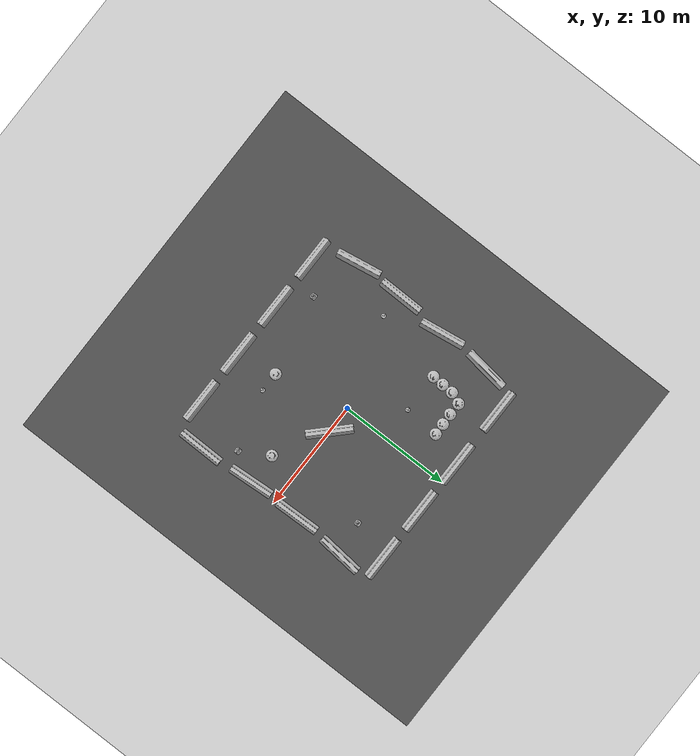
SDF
<sdf version="1.6">
 <world name="default">
  <light name="sun" type="directional">
   <pose>0 0 10 0 -0 0</pose>
   <diffuse>0.8 0.8 0.8 1</diffuse>
   <specular>0.2 0.2 0.2 1</specular>
   <attenuation>
    <range>1000</range>
    <constant>0.9</constant>
    <linear>0.01</linear>
    <quadratic>0.001</quadratic>
   </attenuation>
   <direction>-0.5 0.1 -0.9</direction>
  </light>
  <model name="ground_plane">
   <static>1</static>
   <link name="link">
    <collision name="collision">
     <geometry><plane><normal>0 0 1</normal><size>100 100</size></plane></geometry>
     <surface><friction><ode><mu>100</mu><mu2>50</mu2></ode></friction></surface>
    </collision>
    <visual name="visual">
     <cast_shadows>0</cast_shadows>
     <geometry><plane><normal>0 0 1</normal><size>100 100</size></plane></geometry>
     <material>
      <script><uri>file://media/materials/scripts/gazebo.material</uri><name>Gazebo/Grey</name></script>
     </material>
    </visual>
    <velocity_decay><linear>0</linear><angular>0</angular></velocity_decay>
   </link>
  </model>
  <physics name="default_physics" default="0" type="ode">
   <max_step_size>0.01</max_step_size>
   <real_time_factor>1</real_time_factor>
   <real_time_update_rate>100</real_time_update_rate>
  </physics>
  <scene><ambient>0.4 0.4 0.4 1</ambient><background>0.7 0.7 0.7 1</background><shadows>1</shadows></scene>
  <model name="jersey_barrier">
   <static>1</static>
   <link name="link">
    <visual name="visual">
     <geometry><mesh><uri>model://jersey_barrier/meshes/jersey_barrier.dae</uri></mesh></geometry>
    </visual>
    <collision name="upright">
     <pose>0 0 0.5715 0 -0 0</pose>
     <geometry><box><size>4.06542 0.3063 1.143</size></box></geometry>
    </collision>
    <collision name="base">
     <pose>0 0 0.032258 0 -0 0</pose>
     <geometry><box><size>4.06542 0.8107 0.064516</size></box></geometry>
    </collision>
    <collision name="base2">
     <pose>0 0 0.1 0 -0 0</pose>
     <geometry><box><size>4.06542 0.65 0.1</size></box></geometry>
    </collision>
    <collision name="base3">
     <pose>0 0 0.2 0 -0 0</pose>
     <geometry><box><size>4.06542 0.5 0.1</size></box></geometry>
    </collision>
    <collision name="left-angle">
     <pose>0 -0.224 0.2401 0.9 -0 0</pose>
     <geometry><box><size>4.06542 0.5 0.064516</size></box></geometry>
    </collision>
    <collision name="right-angle">
     <pose>0 0.224 0.2401 -0.9 0 0</pose>
     <geometry><box><size>4.06542 0.5 0.064516</size></box></geometry>
    </collision>
    <velocity_decay><linear>0</linear><angular>0</angular></velocity_decay>
   </link>
   <pose>-8 -10 0 0 -0 0</pose>
  </model>
  <model name="jersey_barrier_0">
   <static>1</static>
   <link name="link">
    <visual name="visual">
     <geometry><mesh><uri>model://jersey_barrier/meshes/jersey_barrier.dae</uri></mesh></geometry>
    </visual>
    <collision name="upright">
     <pose>0 0 0.5715 0 -0 0</pose>
     <geometry><box><size>4.06542 0.3063 1.143</size></box></geometry>
    </collision>
    <collision name="base">
     <pose>0 0 0.032258 0 -0 0</pose>
     <geometry><box><size>4.06542 0.8107 0.064516</size></box></geometry>
    </collision>
    <collision name="base2">
     <pose>0 0 0.1 0 -0 0</pose>
     <geometry><box><size>4.06542 0.65 0.1</size></box></geometry>
    </collision>
    <collision name="base3">
     <pose>0 0 0.2 0 -0 0</pose>
     <geometry><box><size>4.06542 0.5 0.1</size></box></geometry>
    </collision>
    <collision name="left-angle">
     <pose>0 -0.224 0.2401 0.9 -0 0</pose>
     <geometry><box><size>4.06542 0.5 0.064516</size></box></geometry>
    </collision>
    <collision name="right-angle">
     <pose>0 0.224 0.2401 -0.9 0 0</pose>
     <geometry><box><size>4.06542 0.5 0.064516</size></box></geometry>
    </collision>
    <velocity_decay><linear>0</linear><angular>0</angular></velocity_decay>
   </link>
   <pose>-3 -10 0 0 -0 0</pose>
  </model>
  <model name="jersey_barrier_1">
   <static>1</static>
   <link name="link">
    <visual name="visual">
     <geometry><mesh><uri>model://jersey_barrier/meshes/jersey_barrier.dae</uri></mesh></geometry>
    </visual>
    <collision name="upright">
     <pose>0 0 0.5715 0 -0 0</pose>
     <geometry><box><size>4.06542 0.3063 1.143</size></box></geometry>
    </collision>
    <collision name="base">
     <pose>0 0 0.032258 0 -0 0</pose>
     <geometry><box><size>4.06542 0.8107 0.064516</size></box></geometry>
    </collision>
    <collision name="base2">
     <pose>0 0 0.1 0 -0 0</pose>
     <geometry><box><size>4.06542 0.65 0.1</size></box></geometry>
    </collision>
    <collision name="base3">
     <pose>0 0 0.2 0 -0 0</pose>
     <geometry><box><size>4.06542 0.5 0.1</size></box></geometry>
    </collision>
    <collision name="left-angle">
     <pose>0 -0.224 0.2401 0.9 -0 0</pose>
     <geometry><box><size>4.06542 0.5 0.064516</size></box></geometry>
    </collision>
    <collision name="right-angle">
     <pose>0 0.224 0.2401 -0.9 0 0</pose>
     <geometry><box><size>4.06542 0.5 0.064516</size></box></geometry>
    </collision>
    <velocity_decay><linear>0</linear><angular>0</angular></velocity_decay>
   </link>
   <pose>2 -10 0 0 -0 0</pose>
  </model>
  <model name="jersey_barrier_2">
   <static>1</static>
   <link name="link">
    <visual name="visual">
     <geometry><mesh><uri>model://jersey_barrier/meshes/jersey_barrier.dae</uri></mesh></geometry>
    </visual>
    <collision name="upright">
     <pose>0 0 0.5715 0 -0 0</pose>
     <geometry><box><size>4.06542 0.3063 1.143</size></box></geometry>
    </collision>
    <collision name="base">
     <pose>0 0 0.032258 0 -0 0</pose>
     <geometry><box><size>4.06542 0.8107 0.064516</size></box></geometry>
    </collision>
    <collision name="base2">
     <pose>0 0 0.1 0 -0 0</pose>
     <geometry><box><size>4.06542 0.65 0.1</size></box></geometry>
    </collision>
    <collision name="base3">
     <pose>0 0 0.2 0 -0 0</pose>
     <geometry><box><size>4.06542 0.5 0.1</size></box></geometry>
    </collision>
    <collision name="left-angle">
     <pose>0 -0.224 0.2401 0.9 -0 0</pose>
     <geometry><box><size>4.06542 0.5 0.064516</size></box></geometry>
    </collision>
    <collision name="right-angle">
     <pose>0 0.224 0.2401 -0.9 0 0</pose>
     <geometry><box><size>4.06542 0.5 0.064516</size></box></geometry>
    </collision>
    <velocity_decay><linear>0</linear><angular>0</angular></velocity_decay>
   </link>
   <pose>7 -10 0 0 -0 0</pose>
  </model>
  <model name="jersey_barrier_3">
   <static>1</static>
   <link name="link">
    <visual name="visual">
     <geometry><mesh><uri>model://jersey_barrier/meshes/jersey_barrier.dae</uri></mesh></geometry>
    </visual>
    <collision name="upright">
     <pose>0 0 0.5715 0 -0 0</pose>
     <geometry><box><size>4.06542 0.3063 1.143</size></box></geometry>
    </collision>
    <collision name="base">
     <pose>0 0 0.032258 0 -0 0</pose>
     <geometry><box><size>4.06542 0.8107 0.064516</size></box></geometry>
    </collision>
    <collision name="base2">
     <pose>0 0 0.1 0 -0 0</pose>
     <geometry><box><size>4.06542 0.65 0.1</size></box></geometry>
    </collision>
    <collision name="base3">
     <pose>0 0 0.2 0 -0 0</pose>
     <geometry><box><size>4.06542 0.5 0.1</size></box></geometry>
    </collision>
    <collision name="left-angle">
     <pose>0 -0.224 0.2401 0.9 -0 0</pose>
     <geometry><box><size>4.06542 0.5 0.064516</size></box></geometry>
    </collision>
    <collision name="right-angle">
     <pose>0 0.224 0.2401 -0.9 0 0</pose>
     <geometry><box><size>4.06542 0.5 0.064516</size></box></geometry>
    </collision>
    <velocity_decay><linear>0</linear><angular>0</angular></velocity_decay>
   </link>
   <pose>-7.50675 10 0 0 -0 0</pose>
  </model>
  <model name="jersey_barrier_4">
   <static>1</static>
   <link name="link">
    <visual name="visual">
     <geometry><mesh><uri>model://jersey_barrier/meshes/jersey_barrier.dae</uri></mesh></geometry>
    </visual>
    <collision name="upright">
     <pose>0 0 0.5715 0 -0 0</pose>
     <geometry><box><size>4.06542 0.3063 1.143</size></box></geometry>
    </collision>
    <collision name="base">
     <pose>0 0 0.032258 0 -0 0</pose>
     <geometry><box><size>4.06542 0.8107 0.064516</size></box></geometry>
    </collision>
    <collision name="base2">
     <pose>0 0 0.1 0 -0 0</pose>
     <geometry><box><size>4.06542 0.65 0.1</size></box></geometry>
    </collision>
    <collision name="base3">
     <pose>0 0 0.2 0 -0 0</pose>
     <geometry><box><size>4.06542 0.5 0.1</size></box></geometry>
    </collision>
    <collision name="left-angle">
     <pose>0 -0.224 0.2401 0.9 -0 0</pose>
     <geometry><box><size>4.06542 0.5 0.064516</size></box></geometry>
    </collision>
    <collision name="right-angle">
     <pose>0 0.224 0.2401 -0.9 0 0</pose>
     <geometry><box><size>4.06542 0.5 0.064516</size></box></geometry>
    </collision>
    <velocity_decay><linear>0</linear><angular>0</angular></velocity_decay>
   </link>
   <pose>-2 10 0 0 -0 0</pose>
  </model>
  <model name="jersey_barrier_5">
   <static>1</static>
   <link name="link">
    <visual name="visual">
     <geometry><mesh><uri>model://jersey_barrier/meshes/jersey_barrier.dae</uri></mesh></geometry>
    </visual>
    <collision name="upright">
     <pose>0 0 0.5715 0 -0 0</pose>
     <geometry><box><size>4.06542 0.3063 1.143</size></box></geometry>
    </collision>
    <collision name="base">
     <pose>0 0 0.032258 0 -0 0</pose>
     <geometry><box><size>4.06542 0.8107 0.064516</size></box></geometry>
    </collision>
    <collision name="base2">
     <pose>0 0 0.1 0 -0 0</pose>
     <geometry><box><size>4.06542 0.65 0.1</size></box></geometry>
    </collision>
    <collision name="base3">
     <pose>0 0 0.2 0 -0 0</pose>
     <geometry><box><size>4.06542 0.5 0.1</size></box></geometry>
    </collision>
    <collision name="left-angle">
     <pose>0 -0.224 0.2401 0.9 -0 0</pose>
     <geometry><box><size>4.06542 0.5 0.064516</size></box></geometry>
    </collision>
    <collision name="right-angle">
     <pose>0 0.224 0.2401 -0.9 0 0</pose>
     <geometry><box><size>4.06542 0.5 0.064516</size></box></geometry>
    </collision>
    <velocity_decay><linear>0</linear><angular>0</angular></velocity_decay>
   </link>
   <pose>3 10 0 0 -0 0</pose>
  </model>
  <model name="jersey_barrier_6">
   <static>1</static>
   <link name="link">
    <visual name="visual">
     <geometry><mesh><uri>model://jersey_barrier/meshes/jersey_barrier.dae</uri></mesh></geometry>
    </visual>
    <collision name="upright">
     <pose>0 0 0.5715 0 -0 0</pose>
     <geometry><box><size>4.06542 0.3063 1.143</size></box></geometry>
    </collision>
    <collision name="base">
     <pose>0 0 0.032258 0 -0 0</pose>
     <geometry><box><size>4.06542 0.8107 0.064516</size></box></geometry>
    </collision>
    <collision name="base2">
     <pose>0 0 0.1 0 -0 0</pose>
     <geometry><box><size>4.06542 0.65 0.1</size></box></geometry>
    </collision>
    <collision name="base3">
     <pose>0 0 0.2 0 -0 0</pose>
     <geometry><box><size>4.06542 0.5 0.1</size></box></geometry>
    </collision>
    <collision name="left-angle">
     <pose>0 -0.224 0.2401 0.9 -0 0</pose>
     <geometry><box><size>4.06542 0.5 0.064516</size></box></geometry>
    </collision>
    <collision name="right-angle">
     <pose>0 0.224 0.2401 -0.9 0 0</pose>
     <geometry><box><size>4.06542 0.5 0.064516</size></box></geometry>
    </collision>
    <velocity_decay><linear>0</linear><angular>0</angular></velocity_decay>
   </link>
   <pose>8 10 0 0 -0 0</pose>
  </model>
  <model name="jersey_barrier_7">
   <static>1</static>
   <link name="link">
    <visual name="visual">
     <geometry><mesh><uri>model://jersey_barrier/meshes/jersey_barrier.dae</uri></mesh></geometry>
    </visual>
    <collision name="upright">
     <pose>0 0 0.5715 0 -0 0</pose>
     <geometry><box><size>4.06542 0.3063 1.143</size></box></geometry>
    </collision>
    <collision name="base">
     <pose>0 0 0.032258 0 -0 0</pose>
     <geometry><box><size>4.06542 0.8107 0.064516</size></box></geometry>
    </collision>
    <collision name="base2">
     <pose>0 0 0.1 0 -0 0</pose>
     <geometry><box><size>4.06542 0.65 0.1</size></box></geometry>
    </collision>
    <collision name="base3">
     <pose>0 0 0.2 0 -0 0</pose>
     <geometry><box><size>4.06542 0.5 0.1</size></box></geometry>
    </collision>
    <collision name="left-angle">
     <pose>0 -0.224 0.2401 0.9 -0 0</pose>
     <geometry><box><size>4.06542 0.5 0.064516</size></box></geometry>
    </collision>
    <collision name="right-angle">
     <pose>0 0.224 0.2401 -0.9 0 0</pose>
     <geometry><box><size>4.06542 0.5 0.064516</size></box></geometry>
    </collision>
    <velocity_decay><linear>0</linear><angular>0</angular></velocity_decay>
   </link>
   <pose>9.74902 -2.57759 0 0 -0 1.64</pose>
  </model>
  <model name="jersey_barrier_8">
   <static>1</static>
   <link name="link">
    <visual name="visual">
     <geometry><mesh><uri>model://jersey_barrier/meshes/jersey_barrier.dae</uri></mesh></geometry>
    </visual>
    <collision name="upright">
     <pose>0 0 0.5715 0 -0 0</pose>
     <geometry><box><size>4.06542 0.3063 1.143</size></box></geometry>
    </collision>
    <collision name="base">
     <pose>0 0 0.032258 0 -0 0</pose>
     <geometry><box><size>4.06542 0.8107 0.064516</size></box></geometry>
    </collision>
    <collision name="base2">
     <pose>0 0 0.1 0 -0 0</pose>
     <geometry><box><size>4.06542 0.65 0.1</size></box></geometry>
    </collision>
    <collision name="base3">
     <pose>0 0 0.2 0 -0 0</pose>
     <geometry><box><size>4.06542 0.5 0.1</size></box></geometry>
    </collision>
    <collision name="left-angle">
     <pose>0 -0.224 0.2401 0.9 -0 0</pose>
     <geometry><box><size>4.06542 0.5 0.064516</size></box></geometry>
    </collision>
    <collision name="right-angle">
     <pose>0 0.224 0.2401 -0.9 0 0</pose>
     <geometry><box><size>4.06542 0.5 0.064516</size></box></geometry>
    </collision>
    <velocity_decay><linear>0</linear><angular>0</angular></velocity_decay>
   </link>
   <pose>9.70141 2.24369 0 0 -0 1.6</pose>
  </model>
  <model name="jersey_barrier_9">
   <static>1</static>
   <link name="link">
    <visual name="visual">
     <geometry><mesh><uri>model://jersey_barrier/meshes/jersey_barrier.dae</uri></mesh></geometry>
    </visual>
    <collision name="upright">
     <pose>0 0 0.5715 0 -0 0</pose>
     <geometry><box><size>4.06542 0.3063 1.143</size></box></geometry>
    </collision>
    <collision name="base">
     <pose>0 0 0.032258 0 -0 0</pose>
     <geometry><box><size>4.06542 0.8107 0.064516</size></box></geometry>
    </collision>
    <collision name="base2">
     <pose>0 0 0.1 0 -0 0</pose>
     <geometry><box><size>4.06542 0.65 0.1</size></box></geometry>
    </collision>
    <collision name="base3">
     <pose>0 0 0.2 0 -0 0</pose>
     <geometry><box><size>4.06542 0.5 0.1</size></box></geometry>
    </collision>
    <collision name="left-angle">
     <pose>0 -0.224 0.2401 0.9 -0 0</pose>
     <geometry><box><size>4.06542 0.5 0.064516</size></box></geometry>
    </collision>
    <collision name="right-angle">
     <pose>0 0.224 0.2401 -0.9 0 0</pose>
     <geometry><box><size>4.06542 0.5 0.064516</size></box></geometry>
    </collision>
    <velocity_decay><linear>0</linear><angular>0</angular></velocity_decay>
   </link>
   <pose>-10.0607 -6.69856 0 0 0 -1.4</pose>
  </model>
  <model name="jersey_barrier_10">
   <static>1</static>
   <link name="link">
    <visual name="visual">
     <geometry><mesh><uri>model://jersey_barrier/meshes/jersey_barrier.dae</uri></mesh></geometry>
    </visual>
    <collision name="upright">
     <pose>0 0 0.5715 0 -0 0</pose>
     <geometry><box><size>4.06542 0.3063 1.143</size></box></geometry>
    </collision>
    <collision name="base">
     <pose>0 0 0.032258 0 -0 0</pose>
     <geometry><box><size>4.06542 0.8107 0.064516</size></box></geometry>
    </collision>
    <collision name="base2">
     <pose>0 0 0.1 0 -0 0</pose>
     <geometry><box><size>4.06542 0.65 0.1</size></box></geometry>
    </collision>
    <collision name="base3">
     <pose>0 0 0.2 0 -0 0</pose>
     <geometry><box><size>4.06542 0.5 0.1</size></box></geometry>
    </collision>
    <collision name="left-angle">
     <pose>0 -0.224 0.2401 0.9 -0 0</pose>
     <geometry><box><size>4.06542 0.5 0.064516</size></box></geometry>
    </collision>
    <collision name="right-angle">
     <pose>0 0.224 0.2401 -0.9 0 0</pose>
     <geometry><box><size>4.06542 0.5 0.064516</size></box></geometry>
    </collision>
    <velocity_decay><linear>0</linear><angular>0</angular></velocity_decay>
   </link>
   <pose>-10.0774 -2.27159 0 0 -0 1.56</pose>
  </model>
  <model name="jersey_barrier_11">
   <static>1</static>
   <link name="link">
    <visual name="visual">
     <geometry><mesh><uri>model://jersey_barrier/meshes/jersey_barrier.dae</uri></mesh></geometry>
    </visual>
    <collision name="upright">
     <pose>0 0 0.5715 0 -0 0</pose>
     <geometry><box><size>4.06542 0.3063 1.143</size></box></geometry>
    </collision>
    <collision name="base">
     <pose>0 0 0.032258 0 -0 0</pose>
     <geometry><box><size>4.06542 0.8107 0.064516</size></box></geometry>
    </collision>
    <collision name="base2">
     <pose>0 0 0.1 0 -0 0</pose>
     <geometry><box><size>4.06542 0.65 0.1</size></box></geometry>
    </collision>
    <collision name="base3">
     <pose>0 0 0.2 0 -0 0</pose>
     <geometry><box><size>4.06542 0.5 0.1</size></box></geometry>
    </collision>
    <collision name="left-angle">
     <pose>0 -0.224 0.2401 0.9 -0 0</pose>
     <geometry><box><size>4.06542 0.5 0.064516</size></box></geometry>
    </collision>
    <collision name="right-angle">
     <pose>0 0.224 0.2401 -0.9 0 0</pose>
     <geometry><box><size>4.06542 0.5 0.064516</size></box></geometry>
    </collision>
    <velocity_decay><linear>0</linear><angular>0</angular></velocity_decay>
   </link>
   <pose>-9.77013 2.34791 0 0 -0 1.72</pose>
  </model>
  <model name="jersey_barrier_12">
   <static>1</static>
   <link name="link">
    <visual name="visual">
     <geometry><mesh><uri>model://jersey_barrier/meshes/jersey_barrier.dae</uri></mesh></geometry>
    </visual>
    <collision name="upright">
     <pose>0 0 0.5715 0 -0 0</pose>
     <geometry><box><size>4.06542 0.3063 1.143</size></box></geometry>
    </collision>
    <collision name="base">
     <pose>0 0 0.032258 0 -0 0</pose>
     <geometry><box><size>4.06542 0.8107 0.064516</size></box></geometry>
    </collision>
    <collision name="base2">
     <pose>0 0 0.1 0 -0 0</pose>
     <geometry><box><size>4.06542 0.65 0.1</size></box></geometry>
    </collision>
    <collision name="base3">
     <pose>0 0 0.2 0 -0 0</pose>
     <geometry><box><size>4.06542 0.5 0.1</size></box></geometry>
    </collision>
    <collision name="left-angle">
     <pose>0 -0.224 0.2401 0.9 -0 0</pose>
     <geometry><box><size>4.06542 0.5 0.064516</size></box></geometry>
    </collision>
    <collision name="right-angle">
     <pose>0 0.224 0.2401 -0.9 0 0</pose>
     <geometry><box><size>4.06542 0.5 0.064516</size></box></geometry>
    </collision>
    <velocity_decay><linear>0</linear><angular>0</angular></velocity_decay>
   </link>
   <pose>10.0879 -7.62159 0 0 -0 1.56</pose>
  </model>
  <model name="jersey_barrier_13">
   <static>1</static>
   <link name="link">
    <visual name="visual">
     <geometry><mesh><uri>model://jersey_barrier/meshes/jersey_barrier.dae</uri></mesh></geometry>
    </visual>
    <collision name="upright">
     <pose>0 0 0.5715 0 -0 0</pose>
     <geometry><box><size>4.06542 0.3063 1.143</size></box></geometry>
    </collision>
    <collision name="base">
     <pose>0 0 0.032258 0 -0 0</pose>
     <geometry><box><size>4.06542 0.8107 0.064516</size></box></geometry>
    </collision>
    <collision name="base2">
     <pose>0 0 0.1 0 -0 0</pose>
     <geometry><box><size>4.06542 0.65 0.1</size></box></geometry>
    </collision>
    <collision name="base3">
     <pose>0 0 0.2 0 -0 0</pose>
     <geometry><box><size>4.06542 0.5 0.1</size></box></geometry>
    </collision>
    <collision name="left-angle">
     <pose>0 -0.224 0.2401 0.9 -0 0</pose>
     <geometry><box><size>4.06542 0.5 0.064516</size></box></geometry>
    </collision>
    <collision name="right-angle">
     <pose>0 0.224 0.2401 -0.9 0 0</pose>
     <geometry><box><size>4.06542 0.5 0.064516</size></box></geometry>
    </collision>
    <velocity_decay><linear>0</linear><angular>0</angular></velocity_decay>
   </link>
   <pose>10 7 0 0 -0 1.48</pose>
  </model>
  <model name="jersey_barrier_14">
   <static>1</static>
   <link name="link">
    <visual name="visual">
     <geometry><mesh><uri>model://jersey_barrier/meshes/jersey_barrier.dae</uri></mesh></geometry>
    </visual>
    <collision name="upright">
     <pose>0 0 0.5715 0 -0 0</pose>
     <geometry><box><size>4.06542 0.3063 1.143</size></box></geometry>
    </collision>
    <collision name="base">
     <pose>0 0 0.032258 0 -0 0</pose>
     <geometry><box><size>4.06542 0.8107 0.064516</size></box></geometry>
    </collision>
    <collision name="base2">
     <pose>0 0 0.1 0 -0 0</pose>
     <geometry><box><size>4.06542 0.65 0.1</size></box></geometry>
    </collision>
    <collision name="base3">
     <pose>0 0 0.2 0 -0 0</pose>
     <geometry><box><size>4.06542 0.5 0.1</size></box></geometry>
    </collision>
    <collision name="left-angle">
     <pose>0 -0.224 0.2401 0.9 -0 0</pose>
     <geometry><box><size>4.06542 0.5 0.064516</size></box></geometry>
    </collision>
    <collision name="right-angle">
     <pose>0 0.224 0.2401 -0.9 0 0</pose>
     <geometry><box><size>4.06542 0.5 0.064516</size></box></geometry>
    </collision>
    <velocity_decay><linear>0</linear><angular>0</angular></velocity_decay>
   </link>
   <pose>-9.64482 7.05946 0 0 -0 1.44</pose>
  </model>
  <model name="fire_hydrant">
   <static>1</static>
   <link name="link">
    <collision name="collision">
     <geometry><mesh><uri>model://fire_hydrant/meshes/fire_hydrant.dae</uri></mesh></geometry>
    </collision>
    <visual name="visual">
     <geometry><mesh><uri>model://fire_hydrant/meshes/fire_hydrant.dae</uri></mesh></geometry>
    </visual>
    <velocity_decay><linear>0</linear><angular>0</angular></velocity_decay>
   </link>
   <pose>3.18024 -6.51118 0 0 -0 0</pose>
  </model>
  <model name="fire_hydrant_0">
   <static>1</static>
   <link name="link">
    <collision name="collision">
     <geometry><mesh><uri>model://fire_hydrant/meshes/fire_hydrant.dae</uri></mesh></geometry>
    </collision>
    <visual name="visual">
     <geometry><mesh><uri>model://fire_hydrant/meshes/fire_hydrant.dae</uri></mesh></geometry>
    </visual>
    <velocity_decay><linear>0</linear><angular>0</angular></velocity_decay>
   </link>
   <pose>-3 4 0 0 -0 0</pose>
  </model>
  <model name="fire_hydrant_1">
   <static>1</static>
   <link name="link">
    <collision name="collision">
     <geometry><mesh><uri>model://fire_hydrant/meshes/fire_hydrant.dae</uri></mesh></geometry>
    </collision>
    <visual name="visual">
     <geometry><mesh><uri>model://fire_hydrant/meshes/fire_hydrant.dae</uri></mesh></geometry>
    </visual>
    <velocity_decay><linear>0</linear><angular>0</angular></velocity_decay>
   </link>
   <pose>-7.90686 -2.41363 0 0 -0 0</pose>
  </model>
  <model name="jersey_barrier_15">
   <static>1</static>
   <link name="link">
    <visual name="visual">
     <geometry><mesh><uri>model://jersey_barrier/meshes/jersey_barrier.dae</uri></mesh></geometry>
    </visual>
    <collision name="upright">
     <pose>0 0 0.5715 0 -0 0</pose>
     <geometry><box><size>4.06542 0.3063 1.143</size></box></geometry>
    </collision>
    <collision name="base">
     <pose>0 0 0.032258 0 -0 0</pose>
     <geometry><box><size>4.06542 0.8107 0.064516</size></box></geometry>
    </collision>
    <collision name="base2">
     <pose>0 0 0.1 0 -0 0</pose>
     <geometry><box><size>4.06542 0.65 0.1</size></box></geometry>
    </collision>
    <collision name="base3">
     <pose>0 0 0.2 0 -0 0</pose>
     <geometry><box><size>4.06542 0.5 0.1</size></box></geometry>
    </collision>
    <collision name="left-angle">
     <pose>0 -0.224 0.2401 0.9 -0 0</pose>
     <geometry><box><size>4.06542 0.5 0.064516</size></box></geometry>
    </collision>
    <collision name="right-angle">
     <pose>0 0.224 0.2401 -0.9 0 0</pose>
     <geometry><box><size>4.06542 0.5 0.064516</size></box></geometry>
    </collision>
    <velocity_decay><linear>0</linear><angular>0</angular></velocity_decay>
   </link>
   <pose>2.45495 0 0 0 -0 2.36</pose>
  </model>
  <model name="Construction Cone">
   <link name="link">
    <collision name="collision">
     <geometry>
      <mesh><scale>10 10 10</scale><uri>model://construction_cone/meshes/construction_cone.dae</uri></mesh>
     </geometry>
    </collision>
    <visual name="visual">
     <geometry>
      <mesh><scale>10 10 10</scale><uri>model://construction_cone/meshes/construction_cone.dae</uri></mesh>
     </geometry>
    </visual>
    <velocity_decay><linear>0</linear><angular>0</angular></velocity_decay>
    <inertial>
     <inertia><ixx>1</ixx><ixy>0</ixy><ixz>0</ixz><iyy>1</iyy><iyz>0</iyz><izz>1</izz></inertia>
     <mass>1</mass>
    </inertial>
   </link>
   <pose>-5.59121 -8 0.049102 3e-06 -1e-05 1e-06</pose>
   <static>0</static>
  </model>
  <model name="Construction Barrel">
   <link name="link">
    <inertial>
     <pose>0 0 0.4 0 -0 0</pose>
     <mass>500</mass>
     <inertia><ixx>51.2096</ixx><iyy>51.2096</iyy><izz>25</izz><ixy>0</ixy><ixz>0</ixz><iyz>0</iyz></inertia>
    </inertial>
    <collision name="collision">
     <geometry><mesh><uri>model://construction_barrel/meshes/construction_barrel.dae</uri></mesh></geometry>
    </collision>
    <visual name="visual">
     <geometry><mesh><uri>model://construction_barrel/meshes/construction_barrel.dae</uri></mesh></geometry>
    </visual>
    <velocity_decay><linear>0</linear><angular>0</angular></velocity_decay>
   </link>
   <pose>7.00007 -2.54633 0.049893 0.000445 -1.5e-05 0.000376</pose>
   <static>0</static>
  </model>
  <model name="Construction Cone_0">
   <link name="link">
    <collision name="collision">
     <geometry>
      <mesh><scale>10 10 10</scale><uri>model://construction_cone/meshes/construction_cone.dae</uri></mesh>
     </geometry>
    </collision>
    <visual name="visual">
     <geometry>
      <mesh><scale>10 10 10</scale><uri>model://construction_cone/meshes/construction_cone.dae</uri></mesh>
     </geometry>
    </visual>
    <velocity_decay><linear>0</linear><angular>0</angular></velocity_decay>
    <inertial>
     <inertia><ixx>1</ixx><ixy>0</ixy><ixz>0</ixz><iyy>1</iyy><iyz>0</iyz><izz>1</izz></inertia>
     <mass>1</mass>
    </inertial>
   </link>
   <pose>6.99685 6.55732 0.049102 3e-06 -1e-05 -0.007011</pose>
   <static>0</static>
  </model>
  <model name="Construction Barrel_0">
   <link name="link">
    <inertial>
     <pose>0 0 0.4 0 -0 0</pose>
     <mass>500</mass>
     <inertia><ixx>51.2096</ixx><iyy>51.2096</iyy><izz>25</izz><ixy>0</ixy><ixz>0</ixz><iyz>0</iyz></inertia>
    </inertial>
    <collision name="collision">
     <geometry><mesh><uri>model://construction_barrel/meshes/construction_barrel.dae</uri></mesh></geometry>
    </collision>
    <visual name="visual">
     <geometry><mesh><uri>model://construction_barrel/meshes/construction_barrel.dae</uri></mesh></geometry>
    </visual>
    <velocity_decay><linear>0</linear><angular>0</angular></velocity_decay>
   </link>
   <pose>1.45179 -6.51126 0.049912 -0.000174 -0.000352 1.3e-05</pose>
   <static>0</static>
  </model>
  <model name="asphalt_plane">
   <static>1</static>
   <link name="link">
    <collision name="collision"><geometry><box><size>35.4212 40.661 0.1</size></box></geometry></collision>
    <visual name="visual">
     <cast_shadows>0</cast_shadows>
     <geometry><box><size>35.4212 40.661 0.1</size></box></geometry>
     <material>
      <script>
       <uri>model://asphalt_plane/materials/scripts</uri>
       <uri>model://asphalt_plane/materials/textures</uri>
       <name>vrc/asphalt</name>
      </script>
     </material>
    </visual>
    <velocity_decay><linear>0</linear><angular>0</angular></velocity_decay>
   </link>
   <pose>0.076733 -0.110379 0 0 -0 0</pose>
  </model>
  <model name="Construction Barrel_1">
   <link name="link">
    <inertial>
     <pose>0 0 0.4 0 -0 0</pose>
     <mass>500</mass>
     <inertia><ixx>51.2096</ixx><iyy>51.2096</iyy><izz>25</izz><ixy>0</ixy><ixz>0</ixz><iyz>0</iyz></inertia>
    </inertial>
    <collision name="collision">
     <geometry><mesh><uri>model://construction_barrel/meshes/construction_barrel.dae</uri></mesh></geometry>
    </collision>
    <visual name="visual">
     <geometry><mesh><uri>model://construction_barrel/meshes/construction_barrel.dae</uri></mesh></geometry>
    </visual>
    <velocity_decay><linear>0</linear><angular>0</angular></velocity_decay>
   </link>
   <pose>-6.50479 3.98264 0.049893 0.000427 0.000104 -0.009599</pose>
   <static>0</static>
  </model>
  <model name="Construction Barrel_2">
   <link name="link">
    <inertial>
     <pose>0 0 0.4 0 -0 0</pose>
     <mass>500</mass>
     <inertia><ixx>51.2096</ixx><iyy>51.2096</iyy><izz>25</izz><ixy>0</ixy><ixz>0</ixz><iyz>0</iyz></inertia>
    </inertial>
    <collision name="collision">
     <geometry><mesh><uri>model://construction_barrel/meshes/construction_barrel.dae</uri></mesh></geometry>
    </collision>
    <visual name="visual">
     <geometry><mesh><uri>model://construction_barrel/meshes/construction_barrel.dae</uri></mesh></geometry>
    </visual>
    <velocity_decay><linear>0</linear><angular>0</angular></velocity_decay>
   </link>
   <pose>-6.45064 4.99641 0.049892 -0.000212 -0.000395 0.064961</pose>
   <static>0</static>
  </model>
  <model name="Construction Barrel_3">
   <link name="link">
    <inertial>
     <pose>0 0 0.4 0 -0 0</pose>
     <mass>500</mass>
     <inertia><ixx>51.2096</ixx><iyy>51.2096</iyy><izz>25</izz><ixy>0</ixy><ixz>0</ixz><iyz>0</iyz></inertia>
    </inertial>
    <collision name="collision">
     <geometry><mesh><uri>model://construction_barrel/meshes/construction_barrel.dae</uri></mesh></geometry>
    </collision>
    <visual name="visual">
     <geometry><mesh><uri>model://construction_barrel/meshes/construction_barrel.dae</uri></mesh></geometry>
    </visual>
    <velocity_decay><linear>0</linear><angular>0</angular></velocity_decay>
   </link>
   <pose>-6.40172 6.01112 0.049863 -0.000144 -0.000499 -0.12073</pose>
   <static>0</static>
  </model>
  <model name="Construction Barrel_4">
   <link name="link">
    <inertial>
     <pose>0 0 0.4 0 -0 0</pose>
     <mass>500</mass>
     <inertia><ixx>51.2096</ixx><iyy>51.2096</iyy><izz>25</izz><ixy>0</ixy><ixz>0</ixz><iyz>0</iyz></inertia>
    </inertial>
    <collision name="collision">
     <geometry><mesh><uri>model://construction_barrel/meshes/construction_barrel.dae</uri></mesh></geometry>
    </collision>
    <visual name="visual">
     <geometry><mesh><uri>model://construction_barrel/meshes/construction_barrel.dae</uri></mesh></geometry>
    </visual>
    <velocity_decay><linear>0</linear><angular>0</angular></velocity_decay>
   </link>
   <pose>-6.0063 7.00884 0.04988 0.000443 0.000122 -0.049563</pose>
   <static>0</static>
  </model>
  <model name="Construction Barrel_5">
   <link name="link">
    <inertial>
     <pose>0 0 0.4 0 -0 0</pose>
     <mass>500</mass>
     <inertia><ixx>51.2096</ixx><iyy>51.2096</iyy><izz>25</izz><ixy>0</ixy><ixz>0</ixz><iyz>0</iyz></inertia>
    </inertial>
    <collision name="collision">
     <geometry><mesh><uri>model://construction_barrel/meshes/construction_barrel.dae</uri></mesh></geometry>
    </collision>
    <visual name="visual">
     <geometry><mesh><uri>model://construction_barrel/meshes/construction_barrel.dae</uri></mesh></geometry>
    </visual>
    <velocity_decay><linear>0</linear><angular>0</angular></velocity_decay>
   </link>
   <pose>-4.87569 7.00815 0.049874 0.000494 0 0.14617</pose>
   <static>0</static>
  </model>
  <model name="Construction Barrel_6">
   <link name="link">
    <inertial>
     <pose>0 0 0.4 0 -0 0</pose>
     <mass>500</mass>
     <inertia><ixx>51.2096</ixx><iyy>51.2096</iyy><izz>25</izz><ixy>0</ixy><ixz>0</ixz><iyz>0</iyz></inertia>
    </inertial>
    <collision name="collision">
     <geometry><mesh><uri>model://construction_barrel/meshes/construction_barrel.dae</uri></mesh></geometry>
    </collision>
    <visual name="visual">
     <geometry><mesh><uri>model://construction_barrel/meshes/construction_barrel.dae</uri></mesh></geometry>
    </visual>
    <velocity_decay><linear>0</linear><angular>0</angular></velocity_decay>
   </link>
   <pose>-3.86043 7.04837 0.049863 0.000542 -5e-06 0.031907</pose>
   <static>0</static>
  </model>
  <model name="Construction Barrel_7">
   <link name="link">
    <inertial>
     <pose>0 0 0.4 0 -0 0</pose>
     <mass>500</mass>
     <inertia><ixx>51.2096</ixx><iyy>51.2096</iyy><izz>25</izz><ixy>0</ixy><ixz>0</ixz><iyz>0</iyz></inertia>
    </inertial>
    <collision name="collision">
     <geometry><mesh><uri>model://construction_barrel/meshes/construction_barrel.dae</uri></mesh></geometry>
    </collision>
    <visual name="visual">
     <geometry><mesh><uri>model://construction_barrel/meshes/construction_barrel.dae</uri></mesh></geometry>
    </visual>
    <velocity_decay><linear>0</linear><angular>0</angular></velocity_decay>
   </link>
   <pose>-2.84358 7.0757 0.049859 -1.4e-05 -0.000528 0.069905</pose>
   <static>0</static>
  </model>
  <model name="Construction Cone_1">
   <link name="link">
    <collision name="collision">
     <geometry>
      <mesh><scale>10 10 10</scale><uri>model://construction_cone/meshes/construction_cone.dae</uri></mesh>
     </geometry>
    </collision>
    <visual name="visual">
     <geometry>
      <mesh><scale>10 10 10</scale><uri>model://construction_cone/meshes/construction_cone.dae</uri></mesh>
     </geometry>
    </visual>
    <velocity_decay><linear>0</linear><angular>0</angular></velocity_decay>
    <inertial>
     <inertia><ixx>1</ixx><ixy>0</ixy><ixz>0</ixz><iyy>1</iyy><iyz>0</iyz><izz>1</izz></inertia>
     <mass>1</mass>
    </inertial>
   </link>
   <pose>8.42887 -5 0.049102 3e-06 -1e-05 1e-06</pose>
   <static>0</static>
  </model>
  <gravity>0 0 -9.8</gravity>
  <magnetic_field>6e-06 2.3e-05 -4.2e-05</magnetic_field>
  <atmosphere type="adiabatic"/>
  <audio><device>default</device></audio>
  <spherical_coordinates>
   <surface_model>EARTH_WGS84</surface_model>
   <latitude_deg>0</latitude_deg>
   <longitude_deg>0</longitude_deg>
   <elevation>0</elevation>
   <heading_deg>0</heading_deg>
  </spherical_coordinates>
 </world>
</sdf>
